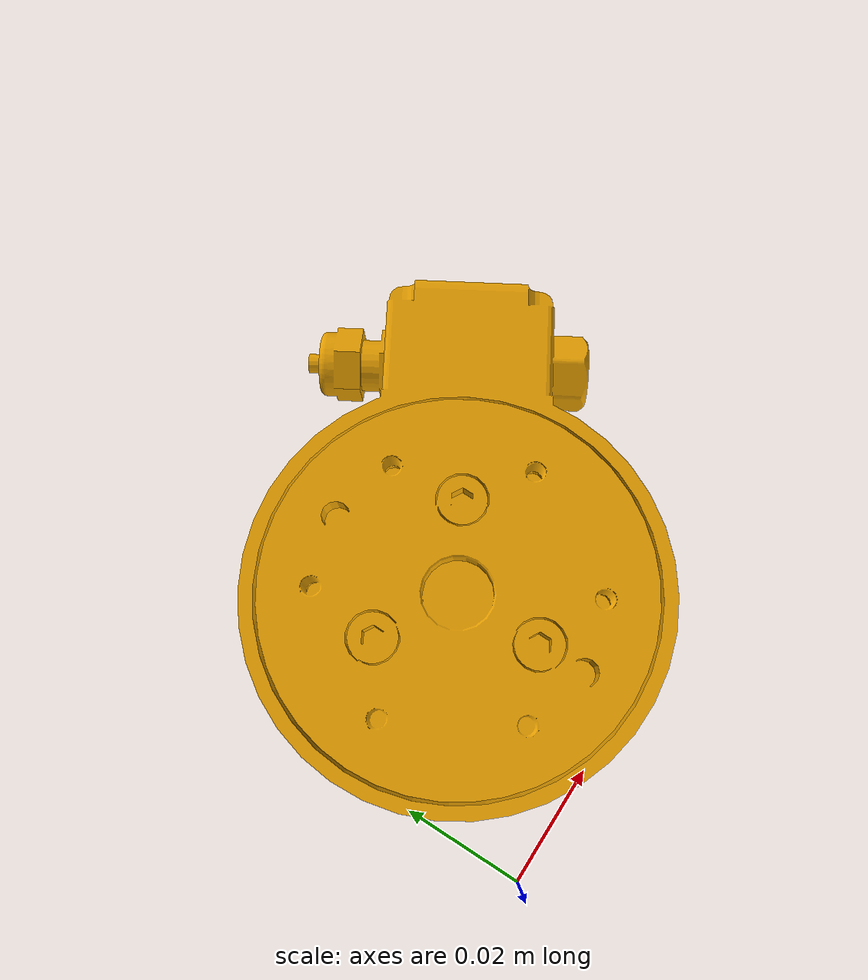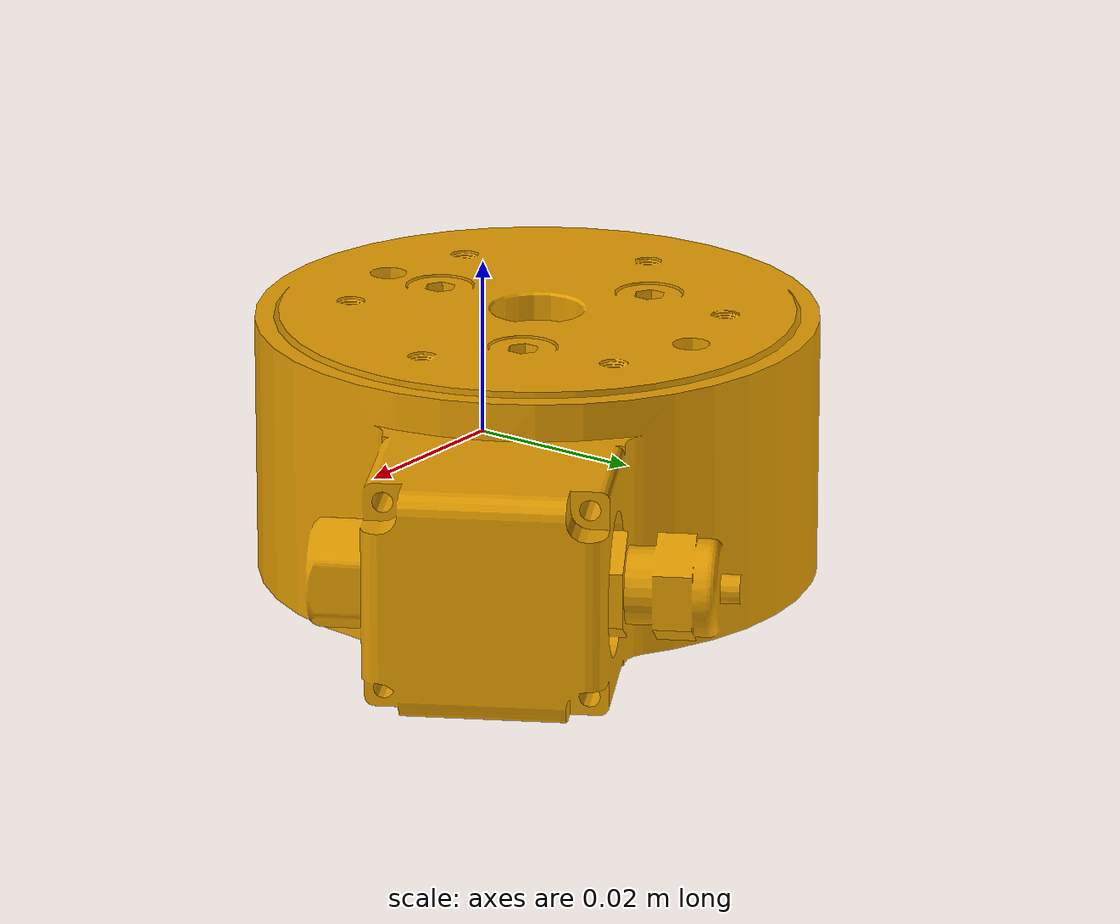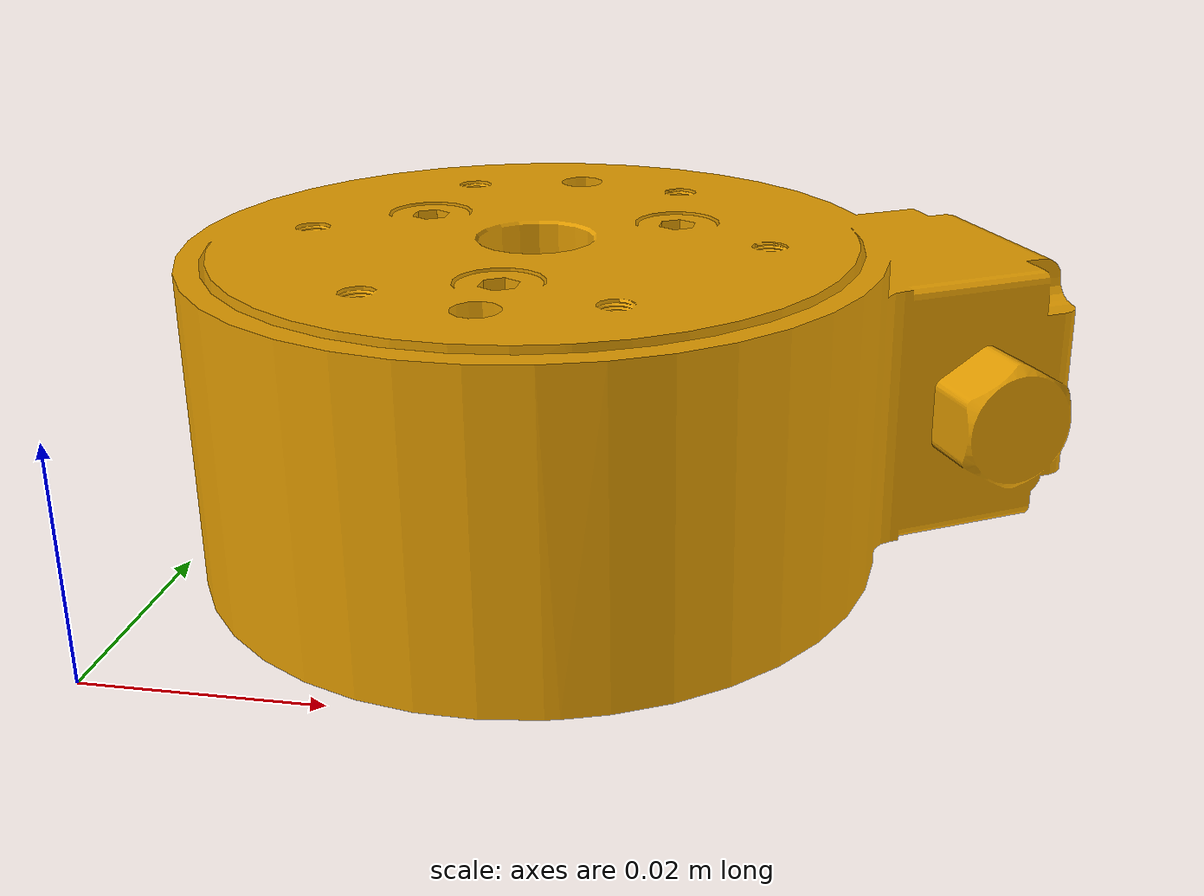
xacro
<?xml version="1.0"?>
<robot xmlns:xacro="http://www.ros.org/wiki/xacro" name="ft_sensor">

    <link name="ft_sensor">
    <visual>
      <origin rpy="0 0 0" xyz="0 -0.0 0"/>
      <geometry>
        <mesh filename="package://ft_sensor/meshes/ft_sensor.STL" scale="0.001 0.001 0.001"/>
      </geometry>
    </visual>
    <collision>
        <geometry>
        <mesh filename="package://ft_sensor/meshes/ft_sensor.STL" scale="0.001 0.001 0.001"/>
        </geometry>
        <origin xyz="0.0 0 0.0" rpy="0.0 0.0 0.0"/>
    </collision>
    <inertial>
        <mass value="0.235"/>
        <inertia ixx="7.1441E-05"
                 ixy="1.6499E-08"
                 ixz="-4.9269E-09"
                 iyy="7.146E-05"
                 iyz="-8.5336E-09"
                 izz="0.00013366"/>
    </inertial>
</link>

</robot>
